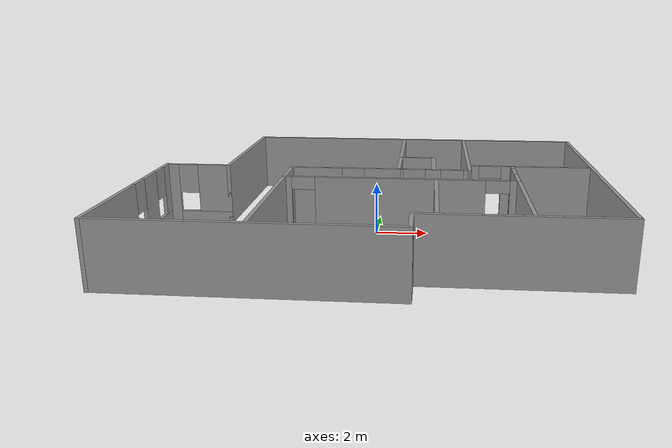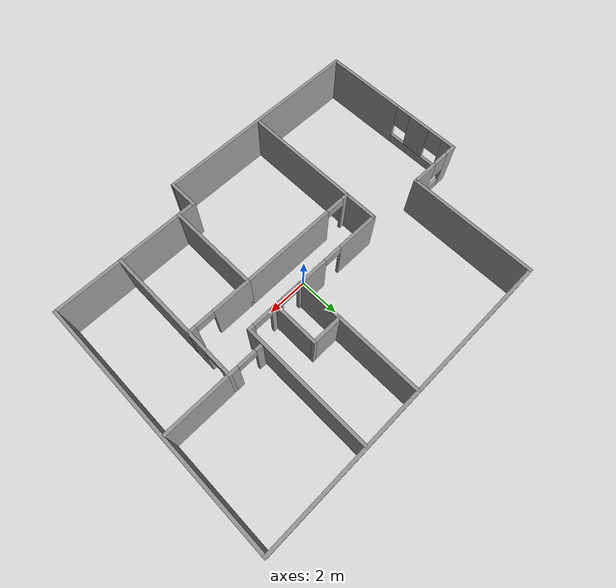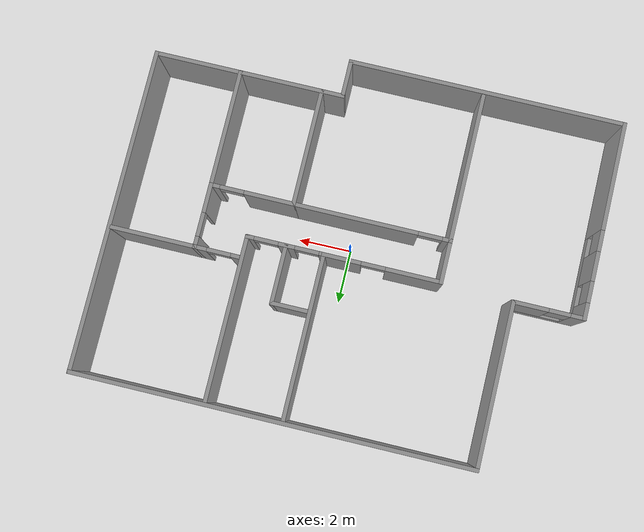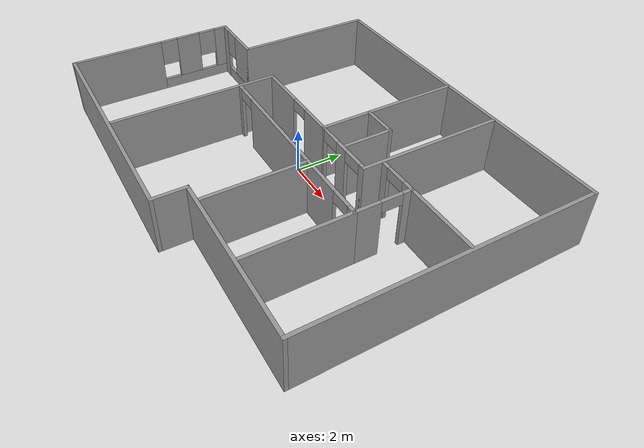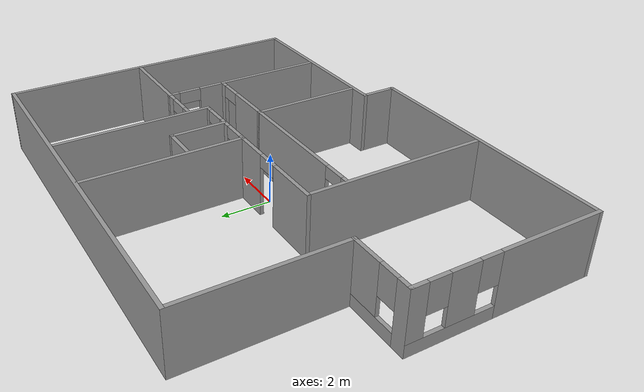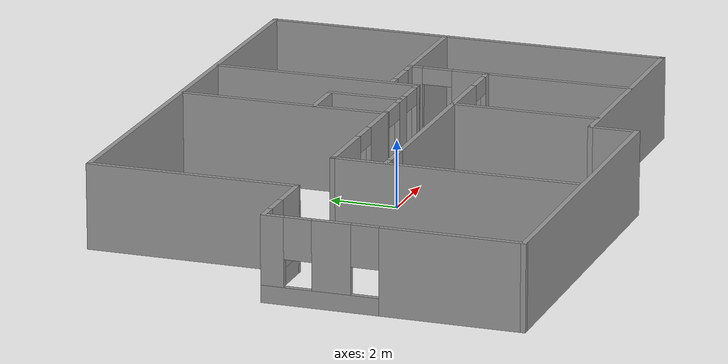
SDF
<sdf version="1.6">
 <world name="default">
  <include><uri>model://sun</uri></include>
  <model name="TESTB">
   <pose>-0.084227 0.12588 0 0 -0 0</pose>
   <link name="Wall_13">
    <collision name="Wall_13_Collision">
     <geometry><box><size>15 0.15 2.5</size></box></geometry>
     <pose>0 0 1.25 0 -0 0</pose>
    </collision>
    <visual name="Wall_13_Visual">
     <pose>0 0 1.25 0 -0 0</pose>
     <geometry><box><size>15 0.15 2.5</size></box></geometry>
     <material>
      <script><uri>file://media/materials/scripts/gazebo.material</uri><name>Gazebo/Grey</name></script>
      <ambient>1 1 1 1</ambient>
     </material>
     <meta><layer>0</layer></meta>
    </visual>
    <pose>1.3 6.725 0 0 -0 0</pose>
   </link>
   <link name="Wall_14">
    <collision name="Wall_14_Collision">
     <geometry><box><size>12.25 0.15 2.5</size></box></geometry>
     <pose>0 0 1.25 0 -0 0</pose>
    </collision>
    <visual name="Wall_14_Visual">
     <pose>0 0 1.25 0 -0 0</pose>
     <geometry><box><size>12.25 0.15 2.5</size></box></geometry>
     <material>
      <script><uri>file://media/materials/scripts/gazebo.material</uri><name>Gazebo/Grey</name></script>
      <ambient>1 1 1 1</ambient>
     </material>
     <meta><layer>0</layer></meta>
    </visual>
    <pose>8.725 0.675 0 0 -0 -1.5708</pose>
   </link>
   <link name="Wall_15">
    <collision name="Wall_15_Collision">
     <geometry><box><size>7.25 0.15 2.5</size></box></geometry>
     <pose>0 0 1.25 0 -0 0</pose>
    </collision>
    <visual name="Wall_15_Visual">
     <pose>0 0 1.25 0 -0 0</pose>
     <geometry><box><size>7.25 0.15 2.5</size></box></geometry>
     <material>
      <script><uri>file://media/materials/scripts/gazebo.material</uri><name>Gazebo/Grey</name></script>
      <ambient>1 1 1 1</ambient>
     </material>
     <meta><layer>0</layer></meta>
    </visual>
    <pose>5.175 -5.375 0 0 -0 3.14159</pose>
   </link>
   <link name="Wall_16">
    <collision name="Wall_16_Collision">
     <geometry><box><size>1.5 0.15 2.5</size></box></geometry>
     <pose>0 0 1.25 0 -0 0</pose>
    </collision>
    <visual name="Wall_16_Visual">
     <pose>0 0 1.25 0 -0 0</pose>
     <geometry><box><size>1.5 0.15 2.5</size></box></geometry>
     <material>
      <script><uri>file://media/materials/scripts/gazebo.material</uri><name>Gazebo/Grey</name></script>
      <ambient>1 1 1 1</ambient>
     </material>
     <meta><layer>0</layer></meta>
    </visual>
    <pose>1.625 -6.05 0 0 -0 -1.5708</pose>
   </link>
   <link name="Wall_17">
    <collision name="Wall_17_Collision">
     <geometry><box><size>10.5 0.15 2.5</size></box></geometry>
     <pose>0 0 1.25 0 -0 0</pose>
    </collision>
    <visual name="Wall_17_Visual">
     <pose>0 0 1.25 0 -0 0</pose>
     <geometry><box><size>10.5 0.15 2.5</size></box></geometry>
     <material>
      <script><uri>file://media/materials/scripts/gazebo.material</uri><name>Gazebo/Grey</name></script>
      <ambient>1 1 1 1</ambient>
     </material>
     <meta><layer>0</layer></meta>
    </visual>
    <pose>-3.55 -6.725 0 0 -0 3.14159</pose>
   </link>
   <link name="Wall_18">
    <pose>-8.725 -3.05 0 0 -0 1.5708</pose>
    <visual name="Wall_18_Visual_0">
     <pose>-1.68885 0 1.25 0 -0 0</pose>
     <geometry><box><size>4.12229 0.15 2.5</size></box></geometry>
     <material>
      <script><uri>file://media/materials/scripts/gazebo.material</uri><name>Gazebo/Grey</name></script>
      <ambient>1 1 1 1</ambient>
     </material>
     <meta><layer>0</layer></meta>
    </visual>
    <collision name="Wall_18_Collision_0">
     <geometry><box><size>4.12229 0.15 2.5</size></box></geometry>
     <pose>-1.68885 0 1.25 0 -0 0</pose>
    </collision>
    <visual name="Wall_18_Visual_1">
     <pose>2.06114 0 0.25 0 -0 0</pose>
     <geometry><box><size>3.37771 0.15 0.5</size></box></geometry>
     <material>
      <script><uri>file://media/materials/scripts/gazebo.material</uri><name>Gazebo/Grey</name></script>
      <ambient>1 1 1 1</ambient>
     </material>
     <meta><layer>0</layer></meta>
    </visual>
    <collision name="Wall_18_Collision_1">
     <geometry><box><size>3.37771 0.15 0.5</size></box></geometry>
     <pose>2.06114 0 0.25 0 -0 0</pose>
    </collision>
    <visual name="Wall_18_Visual_2">
     <pose>1.7299 0 1.5 0 -0 0</pose>
     <geometry><box><size>1.11521 0.15 2</size></box></geometry>
     <material>
      <script><uri>file://media/materials/scripts/gazebo.material</uri><name>Gazebo/Grey</name></script>
      <ambient>1 1 1 1</ambient>
     </material>
     <meta><layer>0</layer></meta>
    </visual>
    <collision name="Wall_18_Collision_2">
     <geometry><box><size>1.11521 0.15 2</size></box></geometry>
     <pose>1.7299 0 1.5 0 -0 0</pose>
    </collision>
    <visual name="Wall_18_Visual_3">
     <pose>3.41875 0 1.5 0 -0 0</pose>
     <geometry><box><size>0.662495 0.15 2</size></box></geometry>
     <material>
      <script><uri>file://media/materials/scripts/gazebo.material</uri><name>Gazebo/Grey</name></script>
      <ambient>1 1 1 1</ambient>
     </material>
     <meta><layer>0</layer></meta>
    </visual>
    <collision name="Wall_18_Collision_3">
     <geometry><box><size>0.662495 0.15 2</size></box></geometry>
     <pose>3.41875 0 1.5 0 -0 0</pose>
    </collision>
    <visual name="Wall_18_Visual_4">
     <pose>0.77229 0 1.9 0 -0 0</pose>
     <geometry><box><size>0.8 0.15 1.2</size></box></geometry>
     <material>
      <script><uri>file://media/materials/scripts/gazebo.material</uri><name>Gazebo/Grey</name></script>
      <ambient>1 1 1 1</ambient>
     </material>
     <meta><layer>0</layer></meta>
    </visual>
    <collision name="Wall_18_Collision_4">
     <geometry><box><size>0.8 0.15 1.2</size></box></geometry>
     <pose>0.77229 0 1.9 0 -0 0</pose>
    </collision>
    <visual name="Wall_18_Visual_5">
     <pose>2.6875 0 1.9 0 -0 0</pose>
     <geometry><box><size>0.8 0.15 1.2</size></box></geometry>
     <material>
      <script><uri>file://media/materials/scripts/gazebo.material</uri><name>Gazebo/Grey</name></script>
      <ambient>1 1 1 1</ambient>
     </material>
     <meta><layer>0</layer></meta>
    </visual>
    <collision name="Wall_18_Collision_5">
     <geometry><box><size>0.8 0.15 1.2</size></box></geometry>
     <pose>2.6875 0 1.9 0 -0 0</pose>
    </collision>
   </link>
   <link name="Wall_19">
    <pose>-7.425 0.625 0 0 -0 0</pose>
    <visual name="Wall_19_Visual_0">
     <pose>-1.08753 0 1.25 0 -0 0</pose>
     <geometry><box><size>0.574933 0.15 2.5</size></box></geometry>
     <material>
      <script><uri>file://media/materials/scripts/gazebo.material</uri><name>Gazebo/Grey</name></script>
      <ambient>1 1 1 1</ambient>
     </material>
     <meta><layer>0</layer></meta>
    </visual>
    <collision name="Wall_19_Collision_0">
     <geometry><box><size>0.574933 0.15 2.5</size></box></geometry>
     <pose>-1.08753 0 1.25 0 -0 0</pose>
    </collision>
    <visual name="Wall_19_Visual_1">
     <pose>0.287467 0 0.25 0 -0 0</pose>
     <geometry><box><size>2.17507 0.15 0.5</size></box></geometry>
     <material>
      <script><uri>file://media/materials/scripts/gazebo.material</uri><name>Gazebo/Grey</name></script>
      <ambient>1 1 1 1</ambient>
     </material>
     <meta><layer>0</layer></meta>
    </visual>
    <collision name="Wall_19_Collision_1">
     <geometry><box><size>2.17507 0.15 0.5</size></box></geometry>
     <pose>0.287467 0 0.25 0 -0 0</pose>
    </collision>
    <visual name="Wall_19_Visual_2">
     <pose>0.687467 0 1.5 0 -0 0</pose>
     <geometry><box><size>1.37507 0.15 2</size></box></geometry>
     <material>
      <script><uri>file://media/materials/scripts/gazebo.material</uri><name>Gazebo/Grey</name></script>
      <ambient>1 1 1 1</ambient>
     </material>
     <meta><layer>0</layer></meta>
    </visual>
    <collision name="Wall_19_Collision_2">
     <geometry><box><size>1.37507 0.15 2</size></box></geometry>
     <pose>0.687467 0 1.5 0 -0 0</pose>
    </collision>
    <visual name="Wall_19_Visual_3">
     <pose>-0.400067 0 1.9 0 -0 0</pose>
     <geometry><box><size>0.8 0.15 1.2</size></box></geometry>
     <material>
      <script><uri>file://media/materials/scripts/gazebo.material</uri><name>Gazebo/Grey</name></script>
      <ambient>1 1 1 1</ambient>
     </material>
     <meta><layer>0</layer></meta>
    </visual>
    <collision name="Wall_19_Collision_3">
     <geometry><box><size>0.8 0.15 1.2</size></box></geometry>
     <pose>-0.400067 0 1.9 0 -0 0</pose>
    </collision>
   </link>
   <link name="Wall_20">
    <collision name="Wall_20_Collision">
     <geometry><box><size>6.25 0.15 2.5</size></box></geometry>
     <pose>0 0 1.25 0 -0 0</pose>
    </collision>
    <visual name="Wall_20_Visual">
     <pose>0 0 1.25 0 -0 0</pose>
     <geometry><box><size>6.25 0.15 2.5</size></box></geometry>
     <material>
      <script><uri>file://media/materials/scripts/gazebo.material</uri><name>Gazebo/Grey</name></script>
      <ambient>1 1 1 1</ambient>
     </material>
     <meta><layer>0</layer></meta>
    </visual>
    <pose>-6.125 3.675 0 0 -0 1.5708</pose>
   </link>
   <link name="Wall_22">
    <collision name="Wall_22_Collision">
     <geometry><box><size>6.25 0.15 2.5</size></box></geometry>
     <pose>0 0 1.25 0 -0 0</pose>
    </collision>
    <visual name="Wall_22_Visual">
     <pose>0 0 1.25 0 -0 0</pose>
     <geometry><box><size>6.25 0.15 2.5</size></box></geometry>
     <material>
      <script><uri>file://media/materials/scripts/gazebo.material</uri><name>Gazebo/Grey</name></script>
      <ambient>1 1 1 1</ambient>
     </material>
     <meta><layer>0</layer></meta>
    </visual>
    <pose>0.910753 3.58323 0 0 -0 -1.5708</pose>
   </link>
   <link name="Wall_23">
    <pose>-1.26425 0.533229 0 0 -0 3.14159</pose>
    <visual name="Wall_23_Visual_0">
     <pose>-1.51979 0 1.25 0 -0 0</pose>
     <geometry><box><size>1.46041 0.15 2.5</size></box></geometry>
     <material>
      <script><uri>file://media/materials/scripts/gazebo.material</uri><name>Gazebo/Grey</name></script>
      <ambient>1 1 1 1</ambient>
     </material>
     <meta><layer>0</layer></meta>
    </visual>
    <collision name="Wall_23_Collision_0">
     <geometry><box><size>1.46041 0.15 2.5</size></box></geometry>
     <pose>-1.51979 0 1.25 0 -0 0</pose>
    </collision>
    <visual name="Wall_23_Visual_1">
     <pose>1.18021 0 1.25 0 -0 0</pose>
     <geometry><box><size>2.13959 0.15 2.5</size></box></geometry>
     <material>
      <script><uri>file://media/materials/scripts/gazebo.material</uri><name>Gazebo/Grey</name></script>
      <ambient>1 1 1 1</ambient>
     </material>
     <meta><layer>0</layer></meta>
    </visual>
    <collision name="Wall_23_Collision_1">
     <geometry><box><size>2.13959 0.15 2.5</size></box></geometry>
     <pose>1.18021 0 1.25 0 -0 0</pose>
    </collision>
    <visual name="Wall_23_Visual_2">
     <pose>-0.339586 0 2.25 0 -0 0</pose>
     <geometry><box><size>0.9 0.15 0.5</size></box></geometry>
     <material>
      <script><uri>file://media/materials/scripts/gazebo.material</uri><name>Gazebo/Grey</name></script>
      <ambient>1 1 1 1</ambient>
     </material>
     <meta><layer>0</layer></meta>
    </visual>
    <collision name="Wall_23_Collision_2">
     <geometry><box><size>0.9 0.15 0.5</size></box></geometry>
     <pose>-0.339586 0 2.25 0 -0 0</pose>
    </collision>
   </link>
   <link name="Wall_24">
    <collision name="Wall_24_Collision">
     <geometry><box><size>7.25 0.15 2.5</size></box></geometry>
     <pose>0 0 1.25 0 -0 0</pose>
    </collision>
    <visual name="Wall_24_Visual">
     <pose>0 0 1.25 0 -0 0</pose>
     <geometry><box><size>7.25 0.15 2.5</size></box></geometry>
     <material>
      <script><uri>file://media/materials/scripts/gazebo.material</uri><name>Gazebo/Grey</name></script>
      <ambient>1 1 1 1</ambient>
     </material>
     <meta><layer>0</layer></meta>
    </visual>
    <pose>-3.43925 -3.01677 0 0 -0 -1.5708</pose>
   </link>
   <link name="Wall_26">
    <pose>-0.50806 -1.01433 0 0 -0 0</pose>
    <visual name="Wall_26_Visual_0">
     <pose>-2.81636 0 1.25 0 -0 0</pose>
     <geometry><box><size>0.367291 0.15 2.5</size></box></geometry>
     <material>
      <script><uri>file://media/materials/scripts/gazebo.material</uri><name>Gazebo/Grey</name></script>
      <ambient>1 1 1 1</ambient>
     </material>
     <meta><layer>0</layer></meta>
    </visual>
    <collision name="Wall_26_Collision_0">
     <geometry><box><size>0.367291 0.15 2.5</size></box></geometry>
     <pose>-2.81636 0 1.25 0 -0 0</pose>
    </collision>
    <visual name="Wall_26_Visual_1">
     <pose>0.633645 0 1.25 0 -0 0</pose>
     <geometry><box><size>4.73271 0.15 2.5</size></box></geometry>
     <material>
      <script><uri>file://media/materials/scripts/gazebo.material</uri><name>Gazebo/Grey</name></script>
      <ambient>1 1 1 1</ambient>
     </material>
     <meta><layer>0</layer></meta>
    </visual>
    <collision name="Wall_26_Collision_1">
     <geometry><box><size>4.73271 0.15 2.5</size></box></geometry>
     <pose>0.633645 0 1.25 0 -0 0</pose>
    </collision>
    <visual name="Wall_26_Visual_2">
     <pose>-2.18271 0 2.25 0 -0 0</pose>
     <geometry><box><size>0.9 0.15 0.5</size></box></geometry>
     <material>
      <script><uri>file://media/materials/scripts/gazebo.material</uri><name>Gazebo/Grey</name></script>
      <ambient>1 1 1 1</ambient>
     </material>
     <meta><layer>0</layer></meta>
    </visual>
    <collision name="Wall_26_Collision_2">
     <geometry><box><size>0.9 0.15 0.5</size></box></geometry>
     <pose>-2.18271 0 2.25 0 -0 0</pose>
    </collision>
   </link>
   <link name="Wall_27">
    <collision name="Wall_27_Collision">
     <geometry><box><size>4.5 0.15 2.5</size></box></geometry>
     <pose>0 0 1.25 0 -0 0</pose>
    </collision>
    <visual name="Wall_27_Visual">
     <pose>0 0 1.25 0 -0 0</pose>
     <geometry><box><size>4.5 0.15 2.5</size></box></geometry>
     <material>
      <script><uri>file://media/materials/scripts/gazebo.material</uri><name>Gazebo/Grey</name></script>
      <ambient>1 1 1 1</ambient>
     </material>
     <meta><layer>0</layer></meta>
    </visual>
    <pose>2.41694 -3.18933 0 0 -0 -1.5708</pose>
   </link>
   <link name="Wall_29">
    <pose>3.96694 -1.01433 0 0 -0 0</pose>
    <visual name="Wall_29_Visual_0">
     <pose>-0.655627 0 1.25 0 -0 0</pose>
     <geometry><box><size>1.93875 0.15 2.5</size></box></geometry>
     <material>
      <script><uri>file://media/materials/scripts/gazebo.material</uri><name>Gazebo/Grey</name></script>
      <ambient>1 1 1 1</ambient>
     </material>
     <meta><layer>0</layer></meta>
    </visual>
    <collision name="Wall_29_Collision_0">
     <geometry><box><size>1.93875 0.15 2.5</size></box></geometry>
     <pose>-0.655627 0 1.25 0 -0 0</pose>
    </collision>
    <visual name="Wall_29_Visual_1">
     <pose>1.41937 0 1.25 0 -0 0</pose>
     <geometry><box><size>0.411254 0.15 2.5</size></box></geometry>
     <material>
      <script><uri>file://media/materials/scripts/gazebo.material</uri><name>Gazebo/Grey</name></script>
      <ambient>1 1 1 1</ambient>
     </material>
     <meta><layer>0</layer></meta>
    </visual>
    <collision name="Wall_29_Collision_1">
     <geometry><box><size>0.411254 0.15 2.5</size></box></geometry>
     <pose>1.41937 0 1.25 0 -0 0</pose>
    </collision>
    <visual name="Wall_29_Visual_2">
     <pose>0.763746 0 2.25 0 -0 0</pose>
     <geometry><box><size>0.9 0.15 0.5</size></box></geometry>
     <material>
      <script><uri>file://media/materials/scripts/gazebo.material</uri><name>Gazebo/Grey</name></script>
      <ambient>1 1 1 1</ambient>
     </material>
     <meta><layer>0</layer></meta>
    </visual>
    <collision name="Wall_29_Collision_2">
     <geometry><box><size>0.9 0.15 0.5</size></box></geometry>
     <pose>0.763746 0 2.25 0 -0 0</pose>
    </collision>
   </link>
   <link name="Wall_30">
    <collision name="Wall_30_Collision">
     <geometry><box><size>4.5 0.15 2.5</size></box></geometry>
     <pose>0 0 1.25 0 -0 0</pose>
    </collision>
    <visual name="Wall_30_Visual">
     <pose>0 0 1.25 0 -0 0</pose>
     <geometry><box><size>4.5 0.15 2.5</size></box></geometry>
     <material>
      <script><uri>file://media/materials/scripts/gazebo.material</uri><name>Gazebo/Grey</name></script>
      <ambient>1 1 1 1</ambient>
     </material>
     <meta><layer>0</layer></meta>
    </visual>
    <pose>5.51694 -3.18933 0 0 -0 -1.5708</pose>
   </link>
   <link name="Wall_32">
    <pose>5.51694 0.160672 0 0 -0 1.5708</pose>
    <visual name="Wall_32_Visual_0">
     <pose>-0.682992 0 1.25 0 -0 0</pose>
     <geometry><box><size>1.13402 0.15 2.5</size></box></geometry>
     <material>
      <script><uri>file://media/materials/scripts/gazebo.material</uri><name>Gazebo/Grey</name></script>
      <ambient>1 1 1 1</ambient>
     </material>
     <meta><layer>0</layer></meta>
    </visual>
    <collision name="Wall_32_Collision_0">
     <geometry><box><size>1.13402 0.15 2.5</size></box></geometry>
     <pose>-0.682992 0 1.25 0 -0 0</pose>
    </collision>
    <visual name="Wall_32_Visual_1">
     <pose>1.01701 0 1.25 0 -0 0</pose>
     <geometry><box><size>0.465984 0.15 2.5</size></box></geometry>
     <material>
      <script><uri>file://media/materials/scripts/gazebo.material</uri><name>Gazebo/Grey</name></script>
      <ambient>1 1 1 1</ambient>
     </material>
     <meta><layer>0</layer></meta>
    </visual>
    <collision name="Wall_32_Collision_1">
     <geometry><box><size>0.465984 0.15 2.5</size></box></geometry>
     <pose>1.01701 0 1.25 0 -0 0</pose>
    </collision>
    <visual name="Wall_32_Visual_2">
     <pose>0.334016 0 2.25 0 -0 0</pose>
     <geometry><box><size>0.9 0.15 0.5</size></box></geometry>
     <material>
      <script><uri>file://media/materials/scripts/gazebo.material</uri><name>Gazebo/Grey</name></script>
      <ambient>1 1 1 1</ambient>
     </material>
     <meta><layer>0</layer></meta>
    </visual>
    <collision name="Wall_32_Collision_2">
     <geometry><box><size>0.9 0.15 0.5</size></box></geometry>
     <pose>0.334016 0 2.25 0 -0 0</pose>
    </collision>
   </link>
   <link name="Wall_33">
    <collision name="Wall_33_Collision">
     <geometry><box><size>3.25 0.15 2.5</size></box></geometry>
     <pose>0 0 1.25 0 -0 0</pose>
    </collision>
    <visual name="Wall_33_Visual">
     <pose>0 0 1.25 0 -0 0</pose>
     <geometry><box><size>3.25 0.15 2.5</size></box></geometry>
     <material>
      <script><uri>file://media/materials/scripts/gazebo.material</uri><name>Gazebo/Grey</name></script>
      <ambient>1 1 1 1</ambient>
     </material>
     <meta><layer>0</layer></meta>
    </visual>
    <pose>7.06694 1.33567 0 0 -0 0</pose>
   </link>
   <link name="Wall_39">
    <pose>2.33575 0.533229 0 0 -0 0</pose>
    <visual name="Wall_39_Visual_0">
     <pose>-1.37355 0 1.25 0 -0 0</pose>
     <geometry><box><size>0.25291 0.15 2.5</size></box></geometry>
     <material>
      <script><uri>file://media/materials/scripts/gazebo.material</uri><name>Gazebo/Grey</name></script>
      <ambient>1 1 1 1</ambient>
     </material>
     <meta><layer>0</layer></meta>
    </visual>
    <collision name="Wall_39_Collision_0">
     <geometry><box><size>0.25291 0.15 2.5</size></box></geometry>
     <pose>-1.37355 0 1.25 0 -0 0</pose>
    </collision>
    <visual name="Wall_39_Visual_1">
     <pose>-0.038984 0 1.25 0 -0 0</pose>
     <geometry><box><size>0.616211 0.15 2.5</size></box></geometry>
     <material>
      <script><uri>file://media/materials/scripts/gazebo.material</uri><name>Gazebo/Grey</name></script>
      <ambient>1 1 1 1</ambient>
     </material>
     <meta><layer>0</layer></meta>
    </visual>
    <collision name="Wall_39_Collision_1">
     <geometry><box><size>0.616211 0.15 2.5</size></box></geometry>
     <pose>-0.038984 0 1.25 0 -0 0</pose>
    </collision>
    <visual name="Wall_39_Visual_2">
     <pose>1.33456 0 1.25 0 -0 0</pose>
     <geometry><box><size>0.330879 0.15 2.5</size></box></geometry>
     <material>
      <script><uri>file://media/materials/scripts/gazebo.material</uri><name>Gazebo/Grey</name></script>
      <ambient>1 1 1 1</ambient>
     </material>
     <meta><layer>0</layer></meta>
    </visual>
    <collision name="Wall_39_Collision_2">
     <geometry><box><size>0.330879 0.15 2.5</size></box></geometry>
     <pose>1.33456 0 1.25 0 -0 0</pose>
    </collision>
    <visual name="Wall_39_Visual_3">
     <pose>-0.79709 0 2.25 0 -0 0</pose>
     <geometry><box><size>0.9 0.15 0.5</size></box></geometry>
     <material>
      <script><uri>file://media/materials/scripts/gazebo.material</uri><name>Gazebo/Grey</name></script>
      <ambient>1 1 1 1</ambient>
     </material>
     <meta><layer>0</layer></meta>
    </visual>
    <collision name="Wall_39_Collision_3">
     <geometry><box><size>0.9 0.15 0.5</size></box></geometry>
     <pose>-0.79709 0 2.25 0 -0 0</pose>
    </collision>
    <visual name="Wall_39_Visual_4">
     <pose>0.719121 0 2.25 0 -0 0</pose>
     <geometry><box><size>0.9 0.15 0.5</size></box></geometry>
     <material>
      <script><uri>file://media/materials/scripts/gazebo.material</uri><name>Gazebo/Grey</name></script>
      <ambient>1 1 1 1</ambient>
     </material>
     <meta><layer>0</layer></meta>
    </visual>
    <collision name="Wall_39_Collision_4">
     <geometry><box><size>0.9 0.15 0.5</size></box></geometry>
     <pose>0.719121 0 2.25 0 -0 0</pose>
    </collision>
   </link>
   <link name="Wall_40">
    <collision name="Wall_40_Collision">
     <geometry><box><size>6.25 0.15 2.5</size></box></geometry>
     <pose>0 0 1.25 0 -0 0</pose>
    </collision>
    <visual name="Wall_40_Visual">
     <pose>0 0 1.25 0 -0 0</pose>
     <geometry><box><size>6.25 0.15 2.5</size></box></geometry>
     <material>
      <script><uri>file://media/materials/scripts/gazebo.material</uri><name>Gazebo/Grey</name></script>
      <ambient>1 1 1 1</ambient>
     </material>
     <meta><layer>0</layer></meta>
    </visual>
    <pose>3.76075 3.58323 0 0 -0 1.5708</pose>
   </link>
   <link name="Wall_42">
    <pose>4.71694 1.33567 0 0 -0 3.14159</pose>
    <visual name="Wall_42_Visual_0">
     <pose>-0.616173 0 1.25 0 -0 0</pose>
     <geometry><box><size>0.517655 0.15 2.5</size></box></geometry>
     <material>
      <script><uri>file://media/materials/scripts/gazebo.material</uri><name>Gazebo/Grey</name></script>
      <ambient>1 1 1 1</ambient>
     </material>
     <meta><layer>0</layer></meta>
    </visual>
    <collision name="Wall_42_Collision_0">
     <geometry><box><size>0.517655 0.15 2.5</size></box></geometry>
     <pose>-0.616173 0 1.25 0 -0 0</pose>
    </collision>
    <visual name="Wall_42_Visual_1">
     <pose>0.708827 0 1.25 0 -0 0</pose>
     <geometry><box><size>0.332345 0.15 2.5</size></box></geometry>
     <material>
      <script><uri>file://media/materials/scripts/gazebo.material</uri><name>Gazebo/Grey</name></script>
      <ambient>1 1 1 1</ambient>
     </material>
     <meta><layer>0</layer></meta>
    </visual>
    <collision name="Wall_42_Collision_1">
     <geometry><box><size>0.332345 0.15 2.5</size></box></geometry>
     <pose>0.708827 0 1.25 0 -0 0</pose>
    </collision>
    <visual name="Wall_42_Visual_2">
     <pose>0.092655 0 2.25 0 -0 0</pose>
     <geometry><box><size>0.9 0.15 0.5</size></box></geometry>
     <material>
      <script><uri>file://media/materials/scripts/gazebo.material</uri><name>Gazebo/Grey</name></script>
      <ambient>1 1 1 1</ambient>
     </material>
     <meta><layer>0</layer></meta>
    </visual>
    <collision name="Wall_42_Collision_2">
     <geometry><box><size>0.9 0.15 0.5</size></box></geometry>
     <pose>0.092655 0 2.25 0 -0 0</pose>
    </collision>
   </link>
   <link name="Wall_46">
    <collision name="Wall_46_Collision">
     <geometry><box><size>2.25 0.15 2.5</size></box></geometry>
     <pose>0 0 1.25 0 -0 0</pose>
    </collision>
    <visual name="Wall_46_Visual">
     <pose>0 0 1.25 0 -0 0</pose>
     <geometry><box><size>2.25 0.15 2.5</size></box></geometry>
     <material>
      <script><uri>file://media/materials/scripts/gazebo.material</uri><name>Gazebo/Grey</name></script>
      <ambient>1 1 1 1</ambient>
     </material>
     <meta><layer>0</layer></meta>
    </visual>
    <pose>2.3179 1.62636 0 0 -0 1.5708</pose>
   </link>
   <link name="Wall_47">
    <collision name="Wall_47_Collision">
     <geometry><box><size>1.5 0.15 2.5</size></box></geometry>
     <pose>0 0 1.25 0 -0 0</pose>
    </collision>
    <visual name="Wall_47_Visual">
     <pose>0 0 1.25 0 -0 0</pose>
     <geometry><box><size>1.5 0.15 2.5</size></box></geometry>
     <material>
      <script><uri>file://media/materials/scripts/gazebo.material</uri><name>Gazebo/Grey</name></script>
      <ambient>1 1 1 1</ambient>
     </material>
     <meta><layer>0</layer></meta>
    </visual>
    <pose>1.6429 2.67636 0 0 -0 3.14159</pose>
   </link>
   <static>1</static>
  </model>
 </world>
</sdf>
